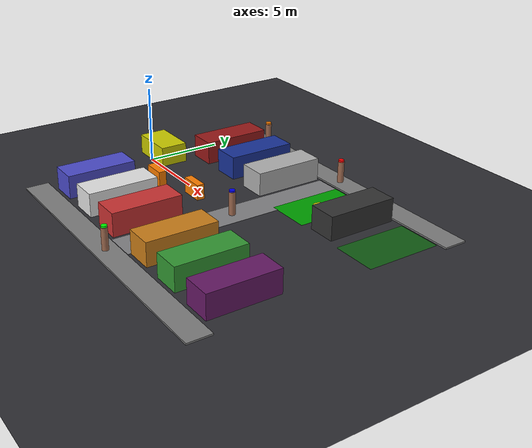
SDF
<?xml version="1.0" ?>
<sdf version="1.6">
  <world name="obstacle_world">

    <!-- System Plugins -->
    <plugin filename="gz-sim-physics-system" name="gz::sim::systems::Physics"/>
    <plugin filename="gz-sim-sensors-system" name="gz::sim::systems::Sensors"><render_engine>ogre2</render_engine></plugin>
    <plugin filename="gz-sim-scene-broadcaster-system" name="gz::sim::systems::SceneBroadcaster"/>
    <plugin filename="gz-sim-user-commands-system" name="gz::sim::systems::UserCommands"/>
    <plugin filename="gz-sim-contact-system" name="gz::sim::systems::Contact"/>

    <physics name="default_physics" default="0" type="ode">
      <max_step_size>0.001</max_step_size><real_time_factor>1</real_time_factor><real_time_update_rate>1000</real_time_update_rate>
    </physics>

    <scene>
      <ambient>0.7 0.7 0.75 1.0</ambient><background>0.5 0.6 0.75 1.0</background><grid>false</grid><origin_visual>false</origin_visual>
    </scene>

    <light type="directional" name="sun">
      <cast_shadows>true</cast_shadows><pose>0 0 15 0 0 0</pose>
      <diffuse>0.9 0.85 0.8 1</diffuse><specular>0.3 0.3 0.3 1</specular>
      <direction>-0.4 0.2 -0.8</direction>
    </light>
    <light type="point" name="lot_light_1">
      <pose>5 0 8 0 0 0</pose><diffuse>1.0 0.95 0.8 1</diffuse><attenuation><range>30</range></attenuation>
    </light>
    <light type="point" name="lot_light_2">
      <pose>15 0 8 0 0 0</pose><diffuse>1.0 0.95 0.8 1</diffuse><attenuation><range>30</range></attenuation>
    </light>

    <!-- Ground Plane -->
    <model name="ground_plane">
      <static>true</static>
      <link name="link">
        <collision name="collision"><geometry><plane><normal>0 0 1</normal><size>100 100</size></plane></geometry></collision>
        <visual name="visual">
          <geometry><plane><normal>0 0 1</normal><size>100 100</size></plane></geometry>
          <material><ambient>0.18 0.18 0.2 1</ambient><diffuse>0.18 0.18 0.2 1</diffuse></material>
        </visual>
      </link>
    </model>

    <!-- Sidewalks (North and South 1.5m wide) -->
    <model name="sidewalk_north">
      <static>true</static><pose>10.0 8.25 0.05 0 0 0</pose>
      <link name="link">
        <collision name="c"><geometry><box><size>20 1.5 0.1</size></box></geometry></collision>
        <visual name="v"><geometry><box><size>20 1.5 0.1</size></box></geometry><material><ambient>0.5 0.5 0.5 1</ambient><diffuse>0.5 0.5 0.5 1</diffuse></material></visual>
      </link>
    </model>
    <model name="sidewalk_south">
      <static>true</static><pose>10.0 -8.25 0.05 0 0 0</pose>
      <link name="link">
        <collision name="c"><geometry><box><size>20 1.5 0.1</size></box></geometry></collision>
        <visual name="v"><geometry><box><size>20 1.5 0.1</size></box></geometry><material><ambient>0.5 0.5 0.5 1</ambient><diffuse>0.5 0.5 0.5 1</diffuse></material></visual>
      </link>
    </model>

    <!-- Crosswalk -->
    <model name="crosswalk">
      <static>true</static><pose>10.0 0 0.01 0 0 0</pose>
      <link name="l"><visual name="v"><geometry><box><size>2.0 14.8 0.02</size></box></geometry><material><ambient>0.9 0.9 0.9 0.5</ambient><diffuse>0.9 0.9 0.9 0.5</diffuse></material></visual></link>
    </model>

    <!-- Perpendicular Parking Bays (North and South sides) -->
    <!-- Bays are 3.0m wide x 5.0m deep -->
    <!-- North Row (y=5.0): centers at x=2,5,8,12,15,18 (gap at 10 for crosswalk) -->
    <model name="parked_north_1"><static>true</static><pose>2.0 5.0 0.8 0 0 -1.5708</pose><link name="l"><collision name="c"><geometry><box><size>4.5 1.8 1.5</size></box></geometry></collision><visual name="v"><geometry><box><size>4.5 1.8 1.5</size></box></geometry><material><ambient>0.6 0.1 0.1 1</ambient><diffuse>0.6 0.1 0.1 1</diffuse></material></visual></link></model>
    <model name="parked_north_2"><static>true</static><pose>5.0 5.0 0.8 0 0 -1.5708</pose><link name="l"><collision name="c"><geometry><box><size>4.5 1.8 1.5</size></box></geometry></collision><visual name="v"><geometry><box><size>4.5 1.8 1.5</size></box></geometry><material><ambient>0.1 0.2 0.6 1</ambient><diffuse>0.1 0.2 0.6 1</diffuse></material></visual></link></model>
    <model name="parked_north_3"><static>true</static><pose>8.0 5.0 0.8 0 0 -1.5708</pose><link name="l"><collision name="c"><geometry><box><size>4.5 1.8 1.5</size></box></geometry></collision><visual name="v"><geometry><box><size>4.5 1.8 1.5</size></box></geometry><material><ambient>0.7 0.7 0.7 1</ambient><diffuse>0.7 0.7 0.7 1</diffuse></material></visual></link></model>

    <!-- TARGET GOAL BAY (x=12.0, y=5.0) - Left side, third last space -->
    <model name="free_space_n4"><static>true</static><pose>12.0 5.0 0.01 0 0 0</pose><link name="l"><visual name="v"><geometry><box><size>2.8 4.8 0.02</size></box></geometry><material><ambient>0.0 0.8 0.0 0.8</ambient><diffuse>0.0 0.8 0.0 0.8</diffuse></material></visual></link></model>

    <model name="parked_north_5"><static>true</static><pose>15.0 5.0 0.8 0 0 -1.5708</pose><link name="l"><collision name="c"><geometry><box><size>4.5 1.8 1.5</size></box></geometry></collision><visual name="v"><geometry><box><size>4.5 1.8 1.5</size></box></geometry><material><ambient>0.2 0.2 0.2 1</ambient><diffuse>0.2 0.2 0.2 1</diffuse></material></visual></link></model>

    <!-- FREE North Bay (x=18.0) -->
    <model name="free_space_n6"><static>true</static><pose>18.0 5.0 0.01 0 0 0</pose><link name="l"><visual name="v"><geometry><box><size>2.8 4.8 0.02</size></box></geometry><material><ambient>0.0 0.6 0.0 0.5</ambient><diffuse>0.0 0.6 0.0 0.5</diffuse></material></visual></link></model>

    <!-- South Row (y=-5.0): centers at x=2,5,8,12,15,18 -->
    <!-- Filled South Bay (x=2.0) -->
    <model name="parked_south_1"><static>true</static><pose>2.0 -5.0 0.8 0 0 1.5708</pose><link name="l"><collision name="c"><geometry><box><size>4.5 1.8 1.5</size></box></geometry></collision><visual name="v"><geometry><box><size>4.5 1.8 1.5</size></box></geometry><material><ambient>0.3 0.3 0.8 1</ambient><diffuse>0.3 0.3 0.8 1</diffuse></material></visual></link></model>

    <model name="parked_south_2"><static>true</static><pose>5.0 -5.0 0.8 0 0 1.5708</pose><link name="l"><collision name="c"><geometry><box><size>4.5 1.8 1.5</size></box></geometry></collision><visual name="v"><geometry><box><size>4.5 1.8 1.5</size></box></geometry><material><ambient>0.9 0.9 0.9 1</ambient><diffuse>0.9 0.9 0.9 1</diffuse></material></visual></link></model>

    <!-- Filled South Bay (x=8.0) -->
    <model name="parked_south_3"><static>true</static><pose>8.0 -5.0 0.8 0 0 1.5708</pose><link name="l"><collision name="c"><geometry><box><size>4.5 1.8 1.5</size></box></geometry></collision><visual name="v"><geometry><box><size>4.5 1.8 1.5</size></box></geometry><material><ambient>0.8 0.2 0.2 1</ambient><diffuse>0.8 0.2 0.2 1</diffuse></material></visual></link></model>

    <model name="parked_south_4"><static>true</static><pose>12.0 -5.0 0.8 0 0 1.5708</pose><link name="l"><collision name="c"><geometry><box><size>4.5 1.8 1.5</size></box></geometry></collision><visual name="v"><geometry><box><size>4.5 1.8 1.5</size></box></geometry><material><ambient>0.8 0.5 0.1 1</ambient><diffuse>0.8 0.5 0.1 1</diffuse></material></visual></link></model>
    <model name="parked_south_5"><static>true</static><pose>15.0 -5.0 0.8 0 0 1.5708</pose><link name="l"><collision name="c"><geometry><box><size>4.5 1.8 1.5</size></box></geometry></collision><visual name="v"><geometry><box><size>4.5 1.8 1.5</size></box></geometry><material><ambient>0.2 0.6 0.2 1</ambient><diffuse>0.2 0.6 0.2 1</diffuse></material></visual></link></model>
    <model name="parked_south_6"><static>true</static><pose>18.0 -5.0 0.8 0 0 1.5708</pose><link name="l"><collision name="c"><geometry><box><size>4.5 1.8 1.5</size></box></geometry></collision><visual name="v"><geometry><box><size>4.5 1.8 1.5</size></box></geometry><material><ambient>0.4 0.1 0.4 1</ambient><diffuse>0.4 0.1 0.4 1</diffuse></material></visual></link></model>

    <!-- Chicane Barriers -->
    <model name="barrier_1">
      <static>true</static><pose>3.5 -1.5 0.5 0 0 0</pose>
      <link name="link">
        <collision name="c"><geometry><box><size>1.5 0.5 1.0</size></box></geometry></collision>
        <visual name="v">
          <geometry><box><size>1.5 0.5 1.0</size></box></geometry>
          <material><ambient>1.0 0.5 0.0 1</ambient><diffuse>1.0 0.5 0.0 1</diffuse></material>
        </visual>
      </link>
    </model>
    <model name="barrier_2">
      <static>true</static><pose>6.5 -0.5 0.5 0 0 0</pose>
      <link name="link">
        <collision name="c"><geometry><box><size>1.5 0.5 1.0</size></box></geometry></collision>
        <visual name="v">
          <geometry><box><size>1.5 0.5 1.0</size></box></geometry>
          <material><ambient>1.0 0.5 0.0 1</ambient><diffuse>1.0 0.5 0.0 1</diffuse></material>
        </visual>
      </link>
    </model>

    <!-- Goal Marker -->
    <model name="goal_marker">
      <static>true</static><pose>12.0 5.0 0.05 0 0 0</pose>
      <link name="link"><visual name="visual">
          <geometry><cylinder><radius>0.4</radius><length>0.1</length></cylinder></geometry>
          <material><ambient>1.0 1.0 0.0 0.8</ambient><diffuse>1.0 1.0 0.0 0.8</diffuse></material>
      </visual></link>
    </model>

    <!-- Dynamic Pedestrians & Cars (placeholders for service calls) -->
    <model name="pedestrian_1">
      <static>true</static><pose>10.0 8.25 0.0 0 0 0</pose>
      <link name="body_link">
        <collision name="c"><pose>0 0 0.75 0 0 0</pose><geometry><cylinder><radius>0.20</radius><length>1.5</length></cylinder></geometry></collision>
        <visual name="body_visual"><pose>0 0 0.75 0 0 0</pose><geometry><cylinder><radius>0.20</radius><length>1.5</length></cylinder></geometry><material><ambient>0.6 0.4 0.3 1</ambient><diffuse>0.6 0.4 0.3 1</diffuse></material></visual>
        <visual name="hat_visual"><pose>0 0 1.55 0 0 0</pose><geometry><cylinder><radius>0.18</radius><length>0.12</length></cylinder></geometry><material><ambient>1.0 0.0 0.0 1</ambient><diffuse>1.0 0.0 0.0 1</diffuse></material></visual>
      </link>
    </model>
    <model name="pedestrian_2">
      <static>true</static><pose>10.0 -8.25 0.0 0 0 0</pose>
      <link name="body_link">
        <collision name="c"><pose>0 0 0.75 0 0 0</pose><geometry><cylinder><radius>0.20</radius><length>1.5</length></cylinder></geometry></collision>
        <visual name="body_visual"><pose>0 0 0.75 0 0 0</pose><geometry><cylinder><radius>0.20</radius><length>1.5</length></cylinder></geometry><material><ambient>0.6 0.4 0.3 1</ambient><diffuse>0.6 0.4 0.3 1</diffuse></material></visual>
        <visual name="hat_visual"><pose>0 0 1.55 0 0 0</pose><geometry><cylinder><radius>0.18</radius><length>0.12</length></cylinder></geometry><material><ambient>0.0 1.0 0.0 1</ambient><diffuse>0.0 1.0 0.0 1</diffuse></material></visual>
      </link>
    </model>
    <model name="pedestrian_3">
      <static>true</static><pose>10.0 0 0.0 0 0 0</pose>
      <link name="body_link">
        <collision name="c"><pose>0 0 0.75 0 0 0</pose><geometry><cylinder><radius>0.20</radius><length>1.5</length></cylinder></geometry></collision>
        <visual name="body_visual"><pose>0 0 0.75 0 0 0</pose><geometry><cylinder><radius>0.20</radius><length>1.5</length></cylinder></geometry><material><ambient>0.6 0.4 0.3 1</ambient><diffuse>0.6 0.4 0.3 1</diffuse></material></visual>
        <visual name="hat_visual"><pose>0 0 1.55 0 0 0</pose><geometry><cylinder><radius>0.18</radius><length>0.12</length></cylinder></geometry><material><ambient>0.0 0.0 1.0 1</ambient><diffuse>0.0 0.0 1.0 1</diffuse></material></visual>
      </link>
    </model>
    <model name="pedestrian_4">
      <static>true</static><pose>2.0 8.25 0.0 0 0 0</pose>
      <link name="body_link">
        <collision name="c"><pose>0 0 0.75 0 0 0</pose><geometry><cylinder><radius>0.20</radius><length>1.5</length></cylinder></geometry></collision>
        <visual name="body_visual"><pose>0 0 0.75 0 0 0</pose><geometry><cylinder><radius>0.20</radius><length>1.5</length></cylinder></geometry><material><ambient>0.6 0.4 0.3 1</ambient><diffuse>0.6 0.4 0.3 1</diffuse></material></visual>
        <visual name="hat_visual"><pose>0 0 1.55 0 0 0</pose><geometry><cylinder><radius>0.18</radius><length>0.12</length></cylinder></geometry><material><ambient>1.0 0.5 0.0 1</ambient><diffuse>1.0 0.5 0.0 1</diffuse></material></visual>
      </link>
    </model>

    <!-- Moving Cars -->
    <model name="moving_car_1">
      <static>true</static><pose>0.0 0.9 0.65 0 0 0</pose>
      <link name="link"><collision name="c"><geometry><box><size>3.0 1.8 1.3</size></box></geometry></collision><visual name="v"><geometry><box><size>3.0 1.8 1.3</size></box></geometry><material><ambient>0.8 0.8 0.0 1</ambient></material></visual></link>
    </model>
    <!-- moving_car_2 removed to simplify parking approach -->

  </world>
</sdf>
